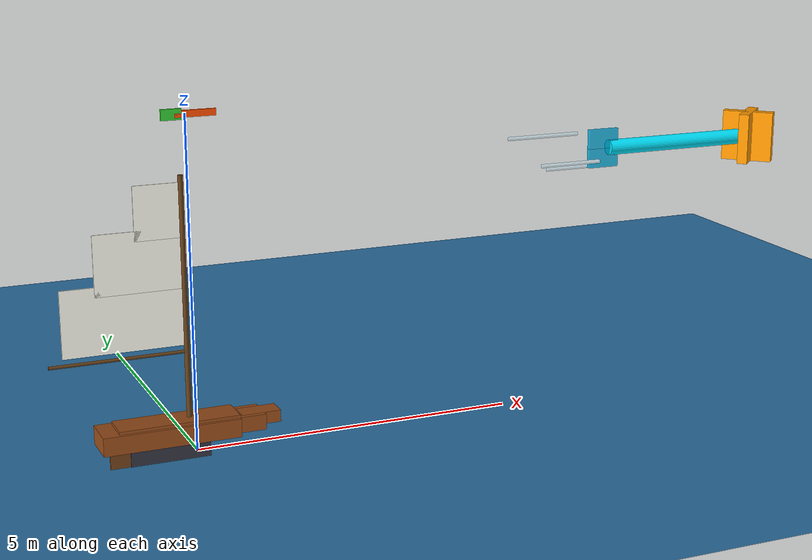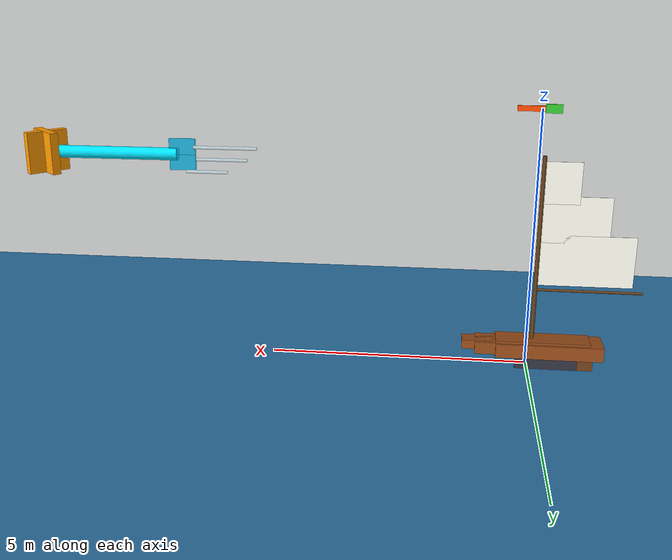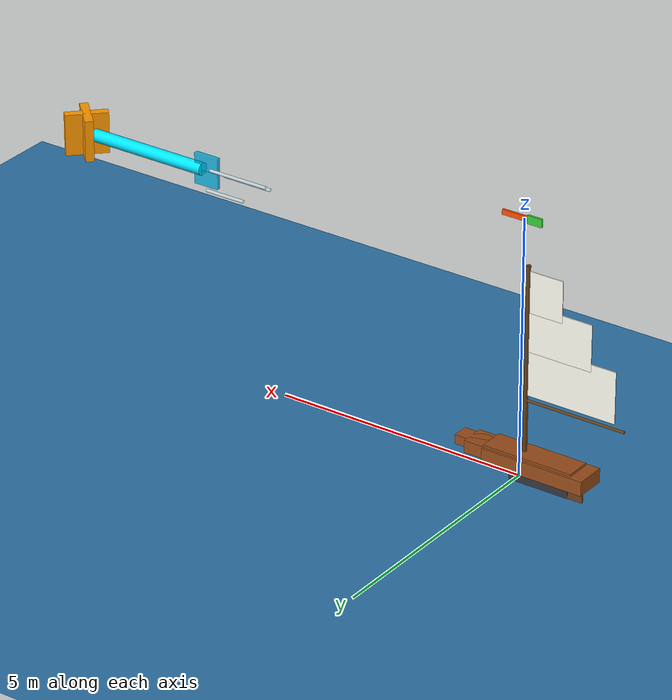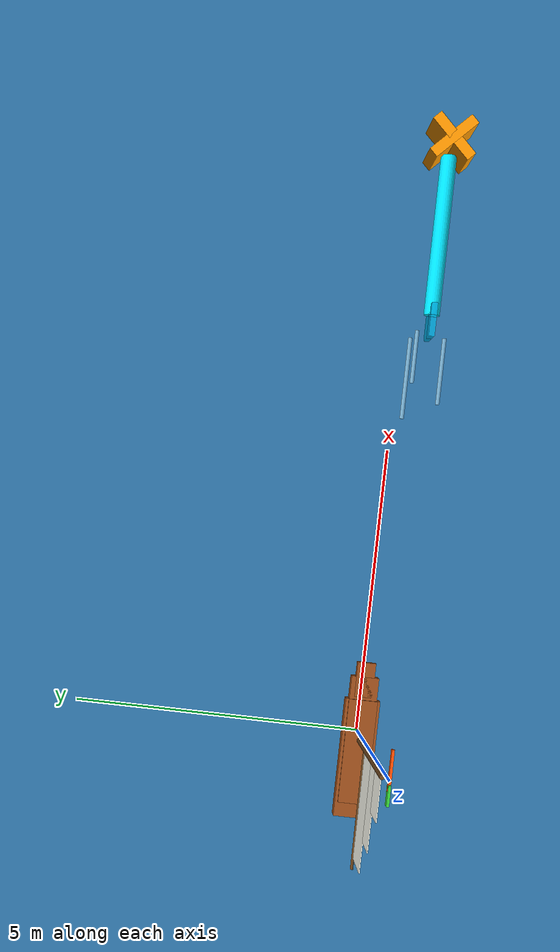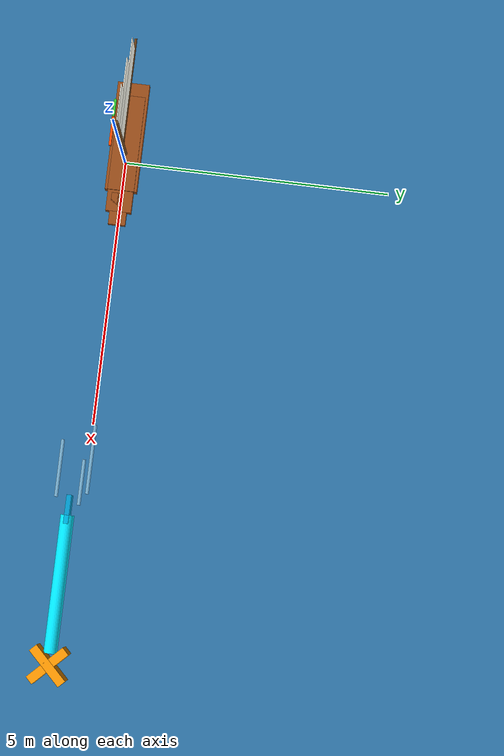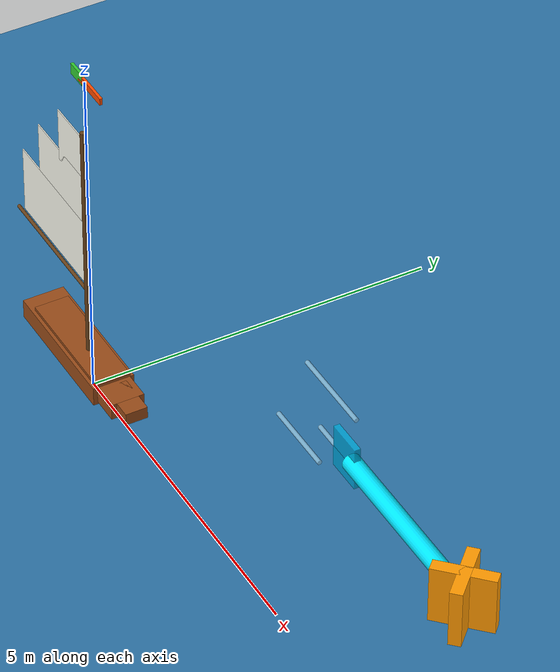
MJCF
<mujoco model="sailboat">
  <option gravity="0 0 -9.81" timestep="0.005" integrator="implicit"/>

  <visual>
    <headlight ambient="0.6 0.6 0.6" diffuse="0.8 0.8 0.8" specular="0.3 0.3 0.3"/>
    <rgba haze="0.85 0.9 0.95 1"/>
    <quality shadowsize="4096"/>
    <global offwidth="1920" offheight="1080"/>
  </visual>

  <asset>
    <texture name="water_tex" type="2d" builtin="checker" rgb1="0.15 0.4 0.6" rgb2="0.2 0.5 0.7" width="512" height="512"/>
    <texture name="sky_tex" type="skybox" builtin="gradient" rgb1="0.5 0.7 0.95" rgb2="1.0 1.0 1.0" width="512" height="512"/>
    <material name="water_mat" texture="water_tex" texrepeat="50 50" reflectance="0.5" specular="0.8" shininess="0.9"/>
    <material name="hull_mat" rgba="0.6 0.3 0.1 1"/>
    <material name="sail_mat" rgba="1 1 0.95 0.95"/>
    <material name="mast_mat" rgba="0.4 0.25 0.1 1"/>
  </asset>

  <worldbody>
    <!-- Sunlight -->
    <light name="sun" pos="50 -50 100" dir="-0.4 0.4 -0.8" diffuse="1 0.95 0.9" specular="0.5 0.5 0.5" castshadow="true"/>

    <!-- Water surface (visual only, slightly below z=0) -->
    <geom name="water" type="plane" size="200 200 1" material="water_mat" pos="0 0 -0.1" contype="0" conaffinity="0"/>

    <!-- Sailboat using slide joints for constrained motion -->
    <body name="boat_base" pos="0 0 0">
      <!-- Minimal inertia for base body -->
      <inertial pos="0 0 0" mass="1" diaginertia="0.1 0.1 0.1"/>
      <!-- X-Y translation on water surface -->
      <joint name="boat_x" type="slide" axis="1 0 0" damping="5"/>
      <joint name="boat_y" type="slide" axis="0 1 0" damping="5"/>
      <!-- Yaw rotation -->
      <joint name="boat_yaw" type="hinge" axis="0 0 1" damping="2"/>

      <!-- Small vertical float for wave effect -->
      <body name="boat_hull" pos="0 0 0.35">
        <joint name="boat_heave" type="slide" axis="0 0 1" damping="100" stiffness="5000" springref="0"/>
        <joint name="boat_roll" type="hinge" axis="1 0 0" damping="500" stiffness="50000" springref="0"/>
        <joint name="boat_pitch" type="hinge" axis="0 1 0" damping="500" stiffness="50000" springref="0"/>

        <!-- Hull -->
        <!-- Main hull split into tapered box sections: flatter bottom and narrowing beam toward bow -->
        <geom name="hull_main" type="box" size="1.025 0.30 0.14" pos="-0.425 0 0"
              mass="77" material="hull_mat" contype="0" conaffinity="0"/>
        <geom name="hull_main_mid" type="box" size="0.55 0.24 0.12" pos="0.45 0 0.02"
              mass="20" material="hull_mat" contype="0" conaffinity="0"/>
        <geom name="hull_main_fore" type="box" size="0.30 0.16 0.09" pos="0.95 0 0.05"
              mass="8" material="hull_mat" contype="0" conaffinity="0"/>

        <!-- Keel (heavy for stability, runs along boat length, positioned aft to balance) -->
        <geom name="keel" type="box" size="0.6 0.03 0.4" pos="-0.4 0 -0.5" mass="150" rgba="0.2 0.2 0.25 1" contype="0" conaffinity="0"/>

        <!-- Deck -->
        <geom name="deck" type="box" size="0.9 0.25 0.03" pos="-0.3 0 0.155" mass="5" material="hull_mat" contype="0" conaffinity="0"/>

        <!-- Mast -->
        <body name="mast_body" pos="-0.1 0 0.185">
          <geom name="mast" type="cylinder" size="0.04 1.8" pos="0 0 1.8" mass="4" material="mast_mat" contype="0" conaffinity="0"/>

          <!-- Boom with sail (points aft at angle 0, swings left/right based on wind) -->
          <body name="boom_body" pos="0 0 1.0">
            <joint name="boom_joint" type="hinge" axis="0 0 1" range="-90 90" damping="10"/>
            <!-- Boom points backward (negative x) at angle 0 -->
            <geom name="boom" type="cylinder" size="0.025 1.0" pos="-1.0 0 0" euler="0 90 0" mass="3" material="mast_mat" contype="0" conaffinity="0"/>

            <!-- Sail (triangular shape, extends aft from mast) -->
            <geom name="sail_base" type="box" size="0.9 0.008 0.5" pos="-0.9 0 0.6" mass="0.5" material="sail_mat" contype="0" conaffinity="0"/>
            <geom name="sail_mid" type="box" size="0.65 0.008 0.45" pos="-0.65 0 1.4" mass="0.3" material="sail_mat" contype="0" conaffinity="0"/>
            <geom name="sail_top" type="box" size="0.35 0.008 0.4" pos="-0.35 0 2.1" mass="0.2" material="sail_mat" contype="0" conaffinity="0"/>
          </body>
        </body>

        <!-- Rudder (range -45 to 45 degrees) -->
        <body name="rudder_body" pos="-1.1 0 -0.15">
          <joint name="rudder_joint" type="hinge" axis="0 0 1" range="-45 45" damping="1"/>
          <geom name="rudder" type="box" size="0.2 0.015 0.25" pos="0 0 -0.2" mass="3" rgba="0.45 0.25 0.1 1" contype="0" conaffinity="0"/>
        </body>

        <!-- Center of mass marker (invisible) -->
        <site name="com" pos="0 0 0" size="0.05" rgba="1 0 0 0"/>

        <!-- Chase camera: birds-eye view from behind and above -->
        <camera name="chase_cam" pos="-20 0 14" xyaxes="0 -1 0 1 0 1.9" fovy="60"/>
      </body>
    </body>

    <!-- Wind direction indicator - large arrow showing where wind blows TO -->
    <body name="wind_arrow" pos="8 0 4" mocap="true">
      <!-- Arrow shaft - bright cyan -->
      <geom name="arrow_shaft" type="cylinder" size="0.12 1.2" euler="0 90 0"
            rgba="0.0 0.9 1.0 0.9" contype="0" conaffinity="0"/>
      <!-- Arrowhead - orange/yellow for contrast -->
      <geom name="arrow_head1" type="box" size="0.4 0.08 0.4" pos="1.4 0 0" euler="0 0 45"
            rgba="1.0 0.6 0.0 0.95" contype="0" conaffinity="0"/>
      <geom name="arrow_head2" type="box" size="0.4 0.08 0.4" pos="1.4 0 0" euler="0 0 -45"
            rgba="1.0 0.6 0.0 0.95" contype="0" conaffinity="0"/>
      <!-- Arrow tail feathers -->
      <geom name="arrow_tail1" type="box" size="0.25 0.04 0.15" pos="-1.3 0 0.15"
            rgba="0.0 0.7 0.9 0.8" contype="0" conaffinity="0"/>
      <geom name="arrow_tail2" type="box" size="0.25 0.04 0.15" pos="-1.3 0 -0.15"
            rgba="0.0 0.7 0.9 0.8" contype="0" conaffinity="0"/>
      <!-- Wind streaks behind arrow -->
      <geom name="streak1" type="cylinder" size="0.03 0.6" euler="0 90 0" pos="-2.2 0.3 0.2"
            rgba="0.8 0.95 1.0 0.5" contype="0" conaffinity="0"/>
      <geom name="streak2" type="cylinder" size="0.03 0.5" euler="0 90 0" pos="-2.0 -0.25 -0.15"
            rgba="0.8 0.95 1.0 0.5" contype="0" conaffinity="0"/>
      <geom name="streak3" type="cylinder" size="0.03 0.4" euler="0 90 0" pos="-1.8 0.15 -0.3"
            rgba="0.8 0.95 1.0 0.5" contype="0" conaffinity="0"/>
    </body>

    <!-- Masthead wind vane (windex) - small indicator on top of mast -->
    <body name="wind_vane" pos="0 0 5" mocap="true">
      <geom name="vane_arrow" type="box" size="0.3 0.02 0.05" pos="0.15 0 0"
            rgba="1.0 0.3 0.0 1.0" contype="0" conaffinity="0"/>
      <geom name="vane_tail" type="box" size="0.15 0.02 0.08" pos="-0.2 0 0"
            rgba="0.2 0.8 0.2 1.0" contype="0" conaffinity="0"/>
    </body>
  </worldbody>

  <actuator>
    <!-- Rudder: ctrlrange in radians (-45° = -0.785, +45° = +0.785) -->
    <position name="rudder_ctrl" joint="rudder_joint" kp="30" ctrlrange="-0.785 0.785"/>
    <!-- Sail angle: 0=tight (boom centered), 90=fully out -->
    <general name="sheet_ctrl" joint="boom_joint" ctrlrange="0 90" gainprm="0" biasprm="0 0 0"/>
  </actuator>
</mujoco>
